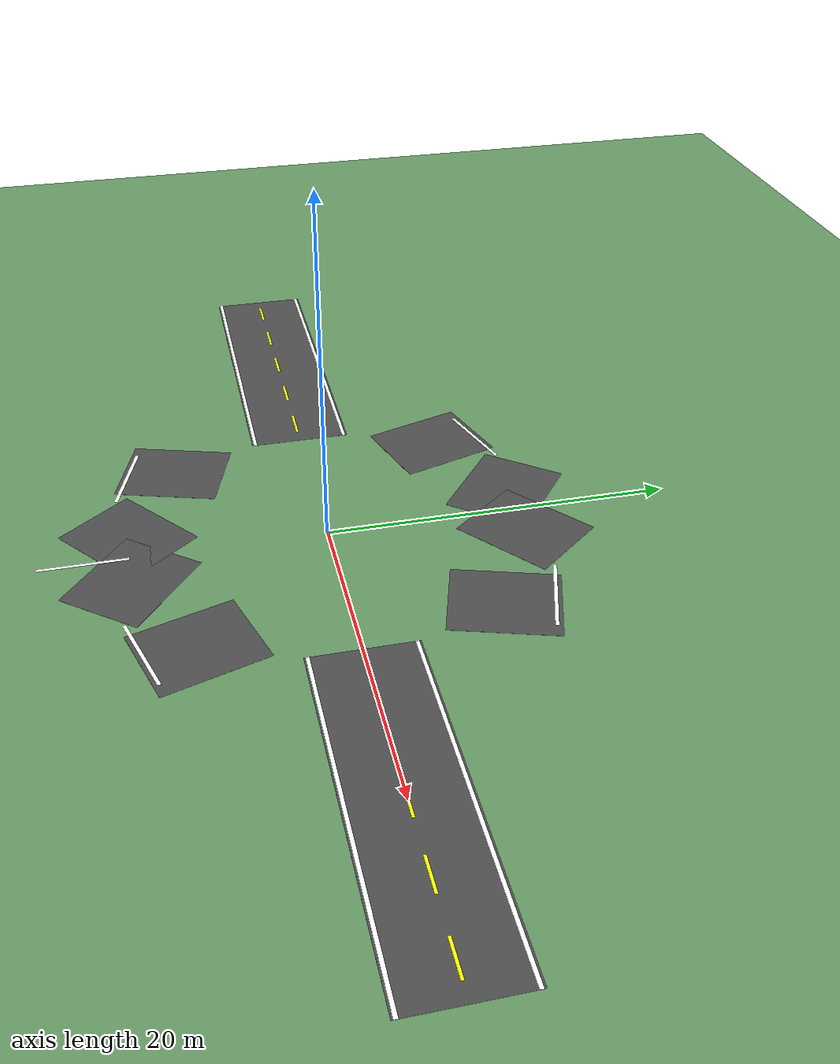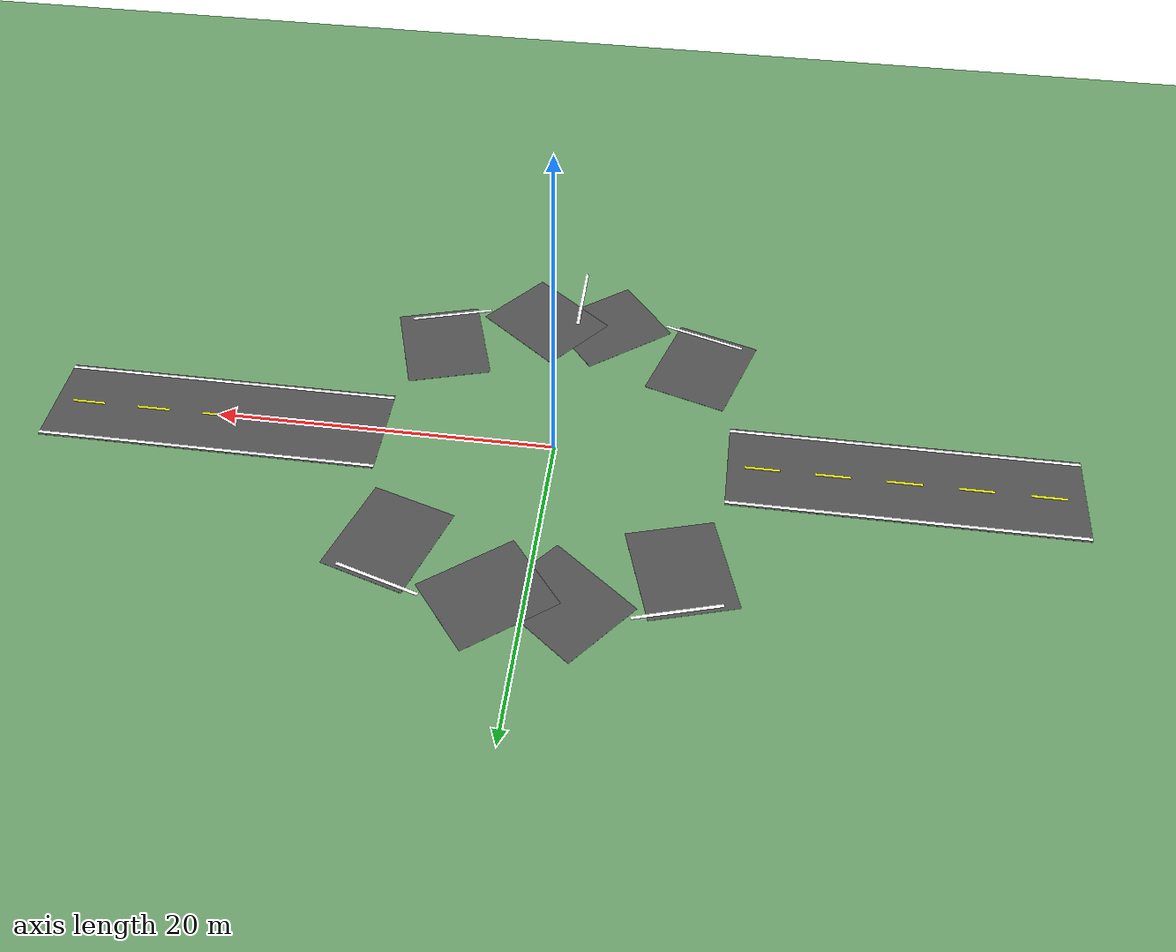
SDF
<?xml version="1.0" ?>
<sdf version="1.9">
  <world name="oval_track">

    <!-- Physics -->
    <physics name="1ms" type="ignored">
      <max_step_size>0.001</max_step_size>
      <real_time_factor>1.0</real_time_factor>
    </physics>

    <!-- Plugins -->
    <plugin
      filename="gz-sim-physics-system"
      name="gz::sim::systems::Physics">
    </plugin>
    <plugin
      filename="gz-sim-user-commands-system"
      name="gz::sim::systems::UserCommands">
    </plugin>
    <plugin
      filename="gz-sim-scene-broadcaster-system"
      name="gz::sim::systems::SceneBroadcaster">
    </plugin>
    <plugin
      filename="gz-sim-sensors-system"
      name="gz::sim::systems::Sensors">
      <render_engine>ogre2</render_engine>
    </plugin>

    <!-- Lighting -->
    <light type="directional" name="sun">
      <cast_shadows>true</cast_shadows>
      <pose>0 0 10 0 0 0</pose>
      <diffuse>0.8 0.8 0.8 1</diffuse>
      <specular>0.2 0.2 0.2 1</specular>
      <attenuation>
        <range>1000</range>
        <constant>0.9</constant>
        <linear>0.01</linear>
        <quadratic>0.001</quadratic>
      </attenuation>
      <direction>-0.5 0.1 -0.9</direction>
    </light>

    <!-- Ground Plane (grass) -->
    <model name="ground_plane">
      <static>true</static>
      <link name="link">
        <collision name="collision">
          <geometry>
            <plane>
              <normal>0 0 1</normal>
              <size>200 200</size>
            </plane>
          </geometry>
        </collision>
        <visual name="visual">
          <geometry>
            <plane>
              <normal>0 0 1</normal>
              <size>200 200</size>
            </plane>
          </geometry>
          <material>
            <ambient>0.3 0.5 0.3 1</ambient>
            <diffuse>0.4 0.6 0.4 1</diffuse>
            <specular>0.01 0.01 0.01 1</specular>
          </material>
        </visual>
      </link>
    </model>

    <!-- OVAL TRACK - Using cylinders for smooth curves and boxes for straights -->

    <!-- Left straight section -->
    <model name="road_straight_left">
      <static>true</static>
      <pose>-20 0 0.01 0 0 0</pose>
      <link name="link">
        <visual name="visual">
          <geometry>
            <box>
              <size>20 6 0.01</size>
            </box>
          </geometry>
          <material>
            <ambient>0.2 0.2 0.2 1</ambient>
            <diffuse>0.3 0.3 0.3 1</diffuse>
            <specular>0.1 0.1 0.1 1</specular>
          </material>
        </visual>
      </link>
    </model>

    <!-- Right straight section -->
    <model name="road_straight_right">
      <static>true</static>
      <pose>20 0 0.01 0 0 0</pose>
      <link name="link">
        <visual name="visual">
          <geometry>
            <box>
              <size>20 6 0.01</size>
            </box>
          </geometry>
          <material>
            <ambient>0.2 0.2 0.2 1</ambient>
            <diffuse>0.3 0.3 0.3 1</diffuse>
            <specular>0.1 0.1 0.1 1</specular>
          </material>
        </visual>
      </link>
    </model>

    <!-- Top curve (using multiple small segments for smooth curve) -->
    <model name="curve_top_1">
      <static>true</static>
      <pose>-8 8 0.01 0 0 0.3</pose>
      <link name="link">
        <visual name="visual">
          <geometry>
            <box>
              <size>5 6 0.01</size>
            </box>
          </geometry>
          <material>
            <ambient>0.2 0.2 0.2 1</ambient>
            <diffuse>0.3 0.3 0.3 1</diffuse>
            <specular>0.1 0.1 0.1 1</specular>
          </material>
        </visual>
      </link>
    </model>

    <model name="curve_top_2">
      <static>true</static>
      <pose>-2 11 0.01 0 0 0.9</pose>
      <link name="link">
        <visual name="visual">
          <geometry>
            <box>
              <size>5 6 0.01</size>
            </box>
          </geometry>
          <material>
            <ambient>0.2 0.2 0.2 1</ambient>
            <diffuse>0.3 0.3 0.3 1</diffuse>
            <specular>0.1 0.1 0.1 1</specular>
          </material>
        </visual>
      </link>
    </model>

    <model name="curve_top_3">
      <static>true</static>
      <pose>2 11 0.01 0 0 -0.9</pose>
      <link name="link">
        <visual name="visual">
          <geometry>
            <box>
              <size>5 6 0.01</size>
            </box>
          </geometry>
          <material>
            <ambient>0.2 0.2 0.2 1</ambient>
            <diffuse>0.3 0.3 0.3 1</diffuse>
            <specular>0.1 0.1 0.1 1</specular>
          </material>
        </visual>
      </link>
    </model>

    <model name="curve_top_4">
      <static>true</static>
      <pose>8 8 0.01 0 0 -0.3</pose>
      <link name="link">
        <visual name="visual">
          <geometry>
            <box>
              <size>5 6 0.01</size>
            </box>
          </geometry>
          <material>
            <ambient>0.2 0.2 0.2 1</ambient>
            <diffuse>0.3 0.3 0.3 1</diffuse>
            <specular>0.1 0.1 0.1 1</specular>
          </material>
        </visual>
      </link>
    </model>

    <!-- Bottom curve (mirror of top) -->
    <model name="curve_bottom_1">
      <static>true</static>
      <pose>8 -8 0.01 0 0 0.3</pose>
      <link name="link">
        <visual name="visual">
          <geometry>
            <box>
              <size>5 6 0.01</size>
            </box>
          </geometry>
          <material>
            <ambient>0.2 0.2 0.2 1</ambient>
            <diffuse>0.3 0.3 0.3 1</diffuse>
            <specular>0.1 0.1 0.1 1</specular>
          </material>
        </visual>
      </link>
    </model>

    <model name="curve_bottom_2">
      <static>true</static>
      <pose>2 -11 0.01 0 0 0.9</pose>
      <link name="link">
        <visual name="visual">
          <geometry>
            <box>
              <size>5 6 0.01</size>
            </box>
          </geometry>
          <material>
            <ambient>0.2 0.2 0.2 1</ambient>
            <diffuse>0.3 0.3 0.3 1</diffuse>
            <specular>0.1 0.1 0.1 1</specular>
          </material>
        </visual>
      </link>
    </model>

    <model name="curve_bottom_3">
      <static>true</static>
      <pose>-2 -11 0.01 0 0 -0.9</pose>
      <link name="link">
        <visual name="visual">
          <geometry>
            <box>
              <size>5 6 0.01</size>
            </box>
          </geometry>
          <material>
            <ambient>0.2 0.2 0.2 1</ambient>
            <diffuse>0.3 0.3 0.3 1</diffuse>
            <specular>0.1 0.1 0.1 1</specular>
          </material>
        </visual>
      </link>
    </model>

    <model name="curve_bottom_4">
      <static>true</static>
      <pose>-8 -8 0.01 0 0 -0.3</pose>
      <link name="link">
        <visual name="visual">
          <geometry>
            <box>
              <size>5 6 0.01</size>
            </box>
          </geometry>
          <material>
            <ambient>0.2 0.2 0.2 1</ambient>
            <diffuse>0.3 0.3 0.3 1</diffuse>
            <specular>0.1 0.1 0.1 1</specular>
          </material>
        </visual>
      </link>
    </model>

    <!-- LANE MARKINGS - Left straight -->
    <model name="lane_left_outer">
      <static>true</static>
      <pose>-20 2.8 0.02 0 0 0</pose>
      <link name="link">
        <visual name="visual">
          <geometry>
            <box>
              <size>20 0.2 0.01</size>
            </box>
          </geometry>
          <material>
            <ambient>1 1 1 1</ambient>
            <diffuse>1 1 1 1</diffuse>
          </material>
        </visual>
      </link>
    </model>

    <model name="lane_left_inner">
      <static>true</static>
      <pose>-20 -2.8 0.02 0 0 0</pose>
      <link name="link">
        <visual name="visual">
          <geometry>
            <box>
              <size>20 0.2 0.01</size>
            </box>
          </geometry>
          <material>
            <ambient>1 1 1 1</ambient>
            <diffuse>1 1 1 1</diffuse>
          </material>
        </visual>
      </link>
    </model>

    <!-- Center dashed lines - Left straight -->
    <model name="lane_left_center_1">
      <static>true</static>
      <pose>-28 0 0.02 0 0 0</pose>
      <link name="link">
        <visual name="visual">
          <geometry>
            <box>
              <size>2 0.15 0.01</size>
            </box>
          </geometry>
          <material>
            <ambient>1 1 0 1</ambient>
            <diffuse>1 1 0 1</diffuse>
          </material>
        </visual>
      </link>
    </model>

    <model name="lane_left_center_2">
      <static>true</static>
      <pose>-24 0 0.02 0 0 0</pose>
      <link name="link">
        <visual name="visual">
          <geometry>
            <box>
              <size>2 0.15 0.01</size>
            </box>
          </geometry>
          <material>
            <ambient>1 1 0 1</ambient>
            <diffuse>1 1 0 1</diffuse>
          </material>
        </visual>
      </link>
    </model>

    <model name="lane_left_center_3">
      <static>true</static>
      <pose>-20 0 0.02 0 0 0</pose>
      <link name="link">
        <visual name="visual">
          <geometry>
            <box>
              <size>2 0.15 0.01</size>
            </box>
          </geometry>
          <material>
            <ambient>1 1 0 1</ambient>
            <diffuse>1 1 0 1</diffuse>
          </material>
        </visual>
      </link>
    </model>

    <model name="lane_left_center_4">
      <static>true</static>
      <pose>-16 0 0.02 0 0 0</pose>
      <link name="link">
        <visual name="visual">
          <geometry>
            <box>
              <size>2 0.15 0.01</size>
            </box>
          </geometry>
          <material>
            <ambient>1 1 0 1</ambient>
            <diffuse>1 1 0 1</diffuse>
          </material>
        </visual>
      </link>
    </model>

    <model name="lane_left_center_5">
      <static>true</static>
      <pose>-12 0 0.02 0 0 0</pose>
      <link name="link">
        <visual name="visual">
          <geometry>
            <box>
              <size>2 0.15 0.01</size>
            </box>
          </geometry>
          <material>
            <ambient>1 1 0 1</ambient>
            <diffuse>1 1 0 1</diffuse>
          </material>
        </visual>
      </link>
    </model>

    <!-- LANE MARKINGS - Right straight -->
    <model name="lane_right_outer">
      <static>true</static>
      <pose>20 2.8 0.02 0 0 0</pose>
      <link name="link">
        <visual name="visual">
          <geometry>
            <box>
              <size>20 0.2 0.01</size>
            </box>
          </geometry>
          <material>
            <ambient>1 1 1 1</ambient>
            <diffuse>1 1 1 1</diffuse>
          </material>
        </visual>
      </link>
    </model>

    <model name="lane_right_inner">
      <static>true</static>
      <pose>20 -2.8 0.02 0 0 0</pose>
      <link name="link">
        <visual name="visual">
          <geometry>
            <box>
              <size>20 0.2 0.01</size>
            </box>
          </geometry>
          <material>
            <ambient>1 1 1 1</ambient>
            <diffuse>1 1 1 1</diffuse>
          </material>
        </visual>
      </link>
    </model>

    <!-- Center dashed lines - Right straight -->
    <model name="lane_right_center_1">
      <static>true</static>
      <pose>12 0 0.02 0 0 0</pose>
      <link name="link">
        <visual name="visual">
          <geometry>
            <box>
              <size>2 0.15 0.01</size>
            </box>
          </geometry>
          <material>
            <ambient>1 1 0 1</ambient>
            <diffuse>1 1 0 1</diffuse>
          </material>
        </visual>
      </link>
    </model>

    <model name="lane_right_center_2">
      <static>true</static>
      <pose>16 0 0.02 0 0 0</pose>
      <link name="link">
        <visual name="visual">
          <geometry>
            <box>
              <size>2 0.15 0.01</size>
            </box>
          </geometry>
          <material>
            <ambient>1 1 0 1</ambient>
            <diffuse>1 1 0 1</diffuse>
          </material>
        </visual>
      </link>
    </model>

    <model name="lane_right_center_3">
      <static>true</static>
      <pose>20 0 0.02 0 0 0</pose>
      <link name="link">
        <visual name="visual">
          <geometry>
            <box>
              <size>2 0.15 0.01</size>
            </box>
          </geometry>
          <material>
            <ambient>1 1 0 1</ambient>
            <diffuse>1 1 0 1</diffuse>
          </material>
        </visual>
      </link>
    </model>

    <model name="lane_right_center_4">
      <static>true</static>
      <pose>24 0 0.02 0 0 0</pose>
      <link name="link">
        <visual name="visual">
          <geometry>
            <box>
              <size>2 0.15 0.01</size>
            </box>
          </geometry>
          <material>
            <ambient>1 1 0 1</ambient>
            <diffuse>1 1 0 1</diffuse>
          </material>
        </visual>
      </link>
    </model>

    <model name="lane_right_center_5">
      <static>true</static>
      <pose>28 0 0.02 0 0 0</pose>
      <link name="link">
        <visual name="visual">
          <geometry>
            <box>
              <size>2 0.15 0.01</size>
            </box>
          </geometry>
          <material>
            <ambient>1 1 0 1</ambient>
            <diffuse>1 1 0 1</diffuse>
          </material>
        </visual>
      </link>
    </model>

    <!-- Lane markings for curves - simplified -->
    <!-- Top curve outer edge -->
    <model name="curve_top_lane_outer_1">
      <static>true</static>
      <pose>-8 10.8 0.02 0 0 0.3</pose>
      <link name="link">
        <visual name="visual">
          <geometry>
            <box>
              <size>5 0.2 0.01</size>
            </box>
          </geometry>
          <material>
            <ambient>1 1 1 1</ambient>
            <diffuse>1 1 1 1</diffuse>
          </material>
        </visual>
      </link>
    </model>

    <model name="curve_top_lane_outer_2">
      <static>true</static>
      <pose>0 13.5 0.02 0 0 1.57</pose>
      <link name="link">
        <visual name="visual">
          <geometry>
            <box>
              <size>5 0.2 0.01</size>
            </box>
          </geometry>
          <material>
            <ambient>1 1 1 1</ambient>
            <diffuse>1 1 1 1</diffuse>
          </material>
        </visual>
      </link>
    </model>

    <model name="curve_top_lane_outer_3">
      <static>true</static>
      <pose>8 10.8 0.02 0 0 -0.3</pose>
      <link name="link">
        <visual name="visual">
          <geometry>
            <box>
              <size>5 0.2 0.01</size>
            </box>
          </geometry>
          <material>
            <ambient>1 1 1 1</ambient>
            <diffuse>1 1 1 1</diffuse>
          </material>
        </visual>
      </link>
    </model>

    <!-- Bottom curve outer edge -->
    <model name="curve_bottom_lane_outer_1">
      <static>true</static>
      <pose>8 -10.8 0.02 0 0 0.3</pose>
      <link name="link">
        <visual name="visual">
          <geometry>
            <box>
              <size>5 0.2 0.01</size>
            </box>
          </geometry>
          <material>
            <ambient>1 1 1 1</ambient>
            <diffuse>1 1 1 1</diffuse>
          </material>
        </visual>
      </link>
    </model>

    <model name="curve_bottom_lane_outer_2">
      <static>true</static>
      <pose>0 -13.5 0.02 0 0 1.57</pose>
      <link name="link">
        <visual name="visual">
          <geometry>
            <box>
              <size>5 0.2 0.01</size>
            </box>
          </geometry>
          <material>
            <ambient>1 1 1 1</ambient>
            <diffuse>1 1 1 1</diffuse>
          </material>
        </visual>
      </link>
    </model>

    <model name="curve_bottom_lane_outer_3">
      <static>true</static>
      <pose>-8 -10.8 0.02 0 0 -0.3</pose>
      <link name="link">
        <visual name="visual">
          <geometry>
            <box>
              <size>5 0.2 0.01</size>
            </box>
          </geometry>
          <material>
            <ambient>1 1 1 1</ambient>
            <diffuse>1 1 1 1</diffuse>
          </material>
        </visual>
      </link>
    </model>

  </world>
</sdf>
